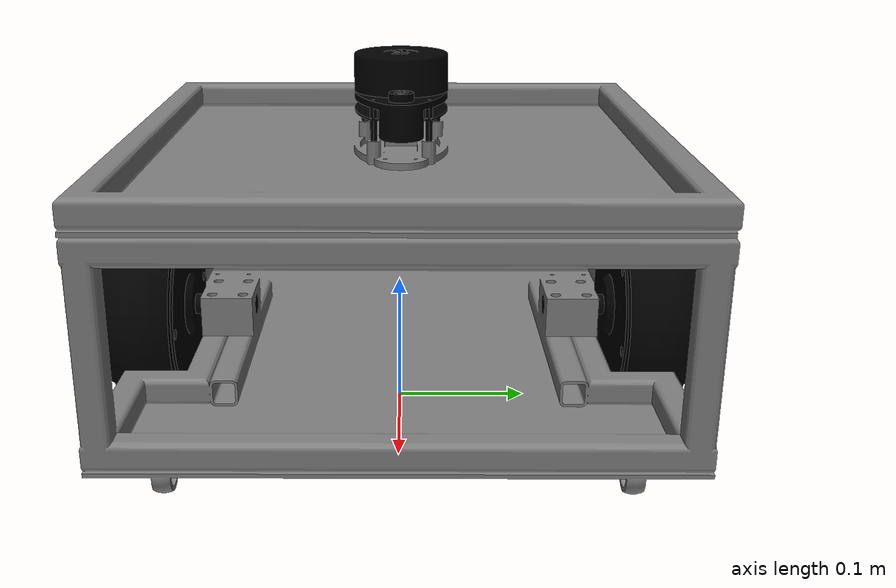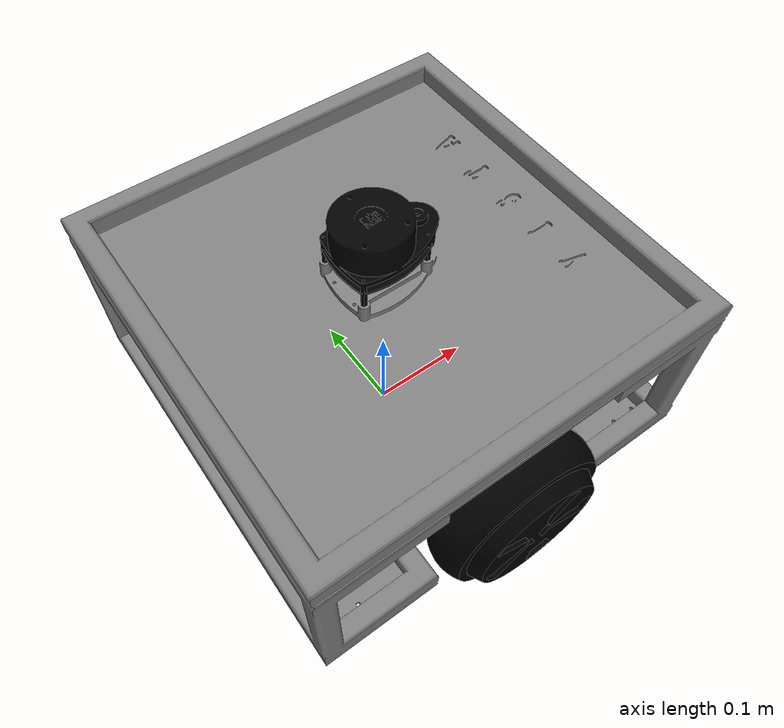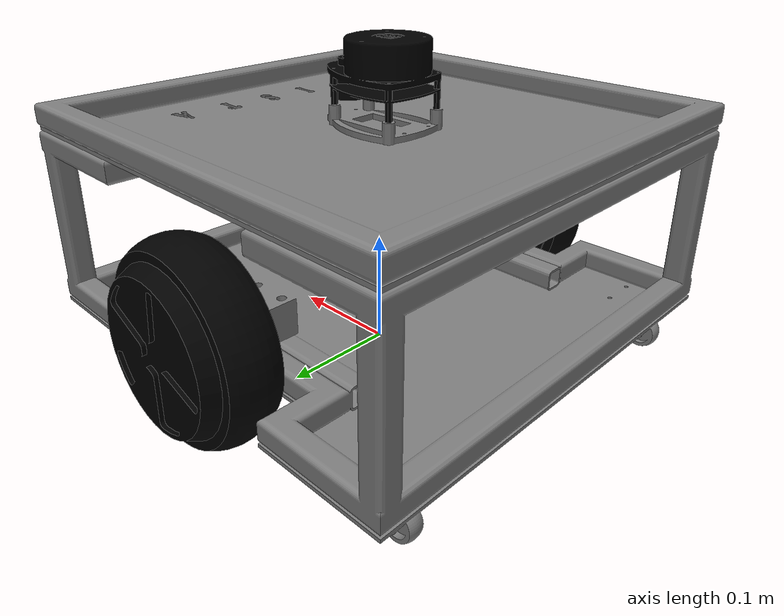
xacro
<?xml version="1.0"?>
<robot name="vista" xmlns:xacro="http://ros.org/wiki/xacro">

  <link name="base_footprint"/>

  <link name="base_link">
    <inertial>
      <origin xyz="-5.59172957473597E-05 -0.000290361698735504 0.0870392390861892" rpy="0 0 0"/>
      <mass value="1.89499142888141"/>
      <inertia
        ixx="0.0158641765170256"
        ixy="3.38082795733725E-06"
        ixz="-1.58125625941425E-07"
        iyy="0.0153351617598045"
        iyz="7.35535085644495E-08"
        izz="0.0308735346658633"/>
    </inertial>
    <visual>
      <origin xyz="0 0 0" rpy="0 0 0"/>
      <geometry>
        <mesh filename="package://my_robot_description/meshes/base_link.STL"/>
      </geometry>
      <material name="gray">
        <color rgba="0.5 0.5 0.5 1"/>
      </material>
    </visual>
    <collision>
      <origin xyz="0 0 0" rpy="0 0 0"/>
      <geometry>
        <mesh filename="package://my_robot_description/meshes/base_link.STL"/>
      </geometry>
    </collision>
  </link>

  <joint name="base_joint" type="fixed">
    <parent link="base_footprint"/>
    <child link="base_link"/>
    <origin xyz="0 0 0.041" rpy="0 0 0"/>
  </joint>

  <link name="right_wheel_link">
    <inertial>
      <origin xyz="-6.16658555185889E-06 -0.00271477776277385 2.77555756156289E-17" rpy="0 0 0"/>
      <mass value="2.99939851399686"/>
      <inertia
        ixx="0.00536782101114923"
        ixy="8.34953625300948E-06"
        ixz="9.48808786330002E-19"
        iyy="0.00904360207407503"
        iyz="-8.3192255181922E-19"
        izz="0.00536780204527647"/>
    </inertial>
    <visual>
      <origin xyz="0 0 0" rpy="0 0 0"/>
      <geometry>
        <mesh filename="package://my_robot_description/meshes/right_wheel_link.STL"/>
      </geometry>
      <material name="black">
        <color rgba="0 0 0 1"/>
      </material>
    </visual>
    <collision>
      <origin xyz="0 0 0" rpy="0 0 0"/>
      <geometry>
        <mesh filename="package://my_robot_description/meshes/right_wheel_link.STL"/>
      </geometry>
    </collision>
  </link>

  <joint name="right_wheel_joint" type="continuous">
    <origin xyz="0.00038523 -0.19073 0.038034" rpy="0 0 0"/>
    <parent link="base_link"/>
    <child link="right_wheel_link"/>
    <axis xyz="0.0022715 1 0"/>
    <dynamics damping="0.1" friction="0.1"/>
  </joint>

  <link name="left_wheel_link">
    <inertial>
      <origin xyz="-6.16658555191441E-06 0.00271477776277382 0" rpy="0 0 0"/>
      <mass value="2.99939851399686"/>
      <inertia
        ixx="0.00536782101114923"
        ixy="-8.34953625301294E-06"
        ixz="9.06861238666184E-20"
        iyy="0.00904360207407503"
        iyz="-4.53641750373978E-19"
        izz="0.00536780204527647"/>
    </inertial>
    <visual>
      <origin xyz="0 0 0" rpy="0 0 0"/>
      <geometry>
        <mesh filename="package://my_robot_description/meshes/left_wheel_link.STL"/>
      </geometry>
      <material name="black">
        <color rgba="0 0 0 1"/>
      </material>
    </visual>
    <collision>
      <origin xyz="0 0 0" rpy="0 0 0"/>
      <geometry>
        <mesh filename="package://my_robot_description/meshes/left_wheel_link.STL"/>
      </geometry>
    </collision>
  </link>

  <joint name="left_wheel_joint" type="continuous">
    <origin xyz="0.00038523 0.19067 0.038034" rpy="0 0 0"/>
    <parent link="base_link"/>
    <child link="left_wheel_link"/>
    <axis xyz="0.0022715 1 0"/>
    <dynamics damping="0.1" friction="0.1"/>
  </joint>

  <link name="lidar_link">
    <inertial>
      <origin xyz="0.00676782080182922 -4.35639378430896E-05 -0.00751652348121995" rpy="0 0 0"/>
      <mass value="1.33540733349919"/>
      <inertia
        ixx="0.000624666379238873"
        ixy="-3.27743253346308E-06"
        ixz="0.000158302703130538"
        iyy="0.000973324044543591"
        iyz="-1.95143396769176E-06"
        izz="0.00110659557257935"/>
    </inertial>
    <visual>
      <origin xyz="0 0 0" rpy="0 0 0"/>
      <geometry>
        <mesh filename="package://my_robot_description/meshes/lidar_link.STL"/>
      </geometry>
      <material name="black">
        <color rgba="0 0 0 1"/>
      </material>
    </visual>
    <collision>
      <origin xyz="0 0 0" rpy="0 0 0"/>
      <geometry>
        <mesh filename="package://my_robot_description/meshes/lidar_link.STL"/>
      </geometry>
    </collision>
  </link>

  <joint name="lidar_joint" type="fixed">
    <origin xyz="-0.010409 0.0011078 0.21995" rpy="0 0 0"/>
    <parent link="base_link"/>
    <child link="lidar_link"/>
  </joint>

</robot>
